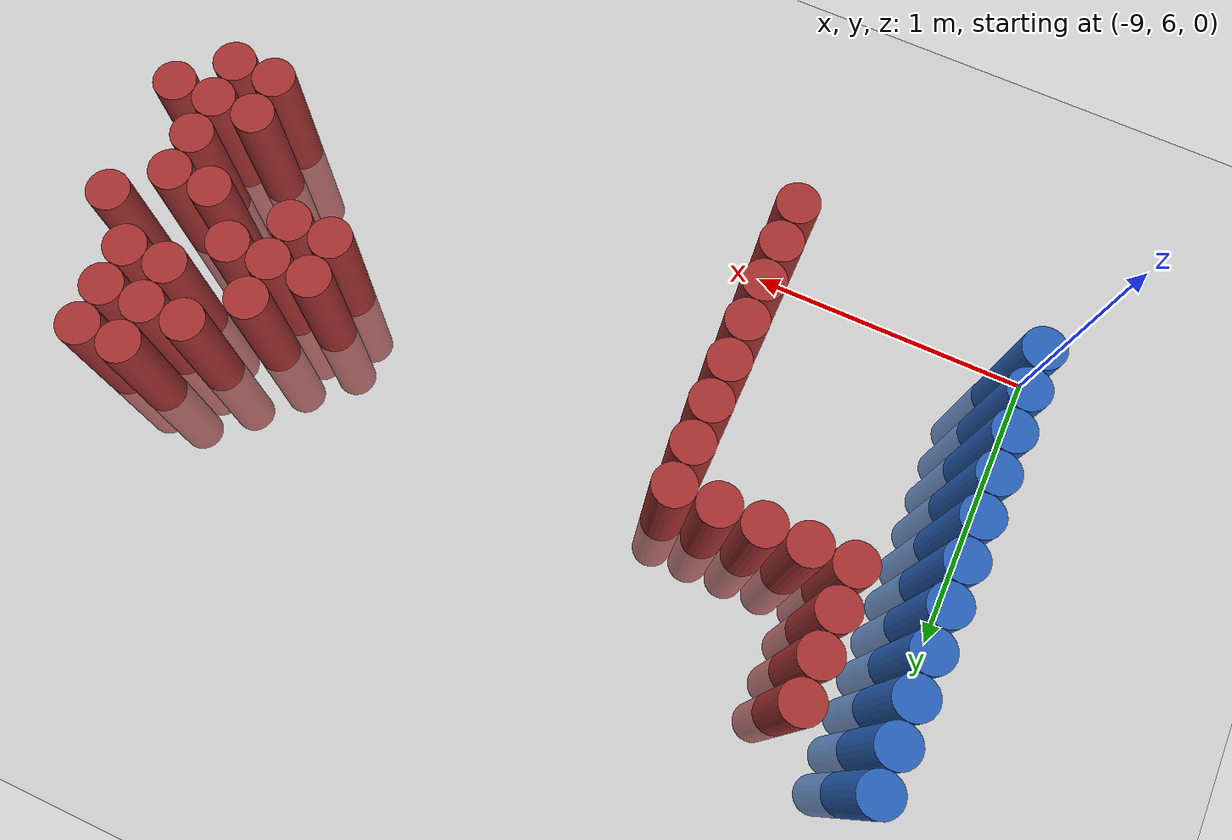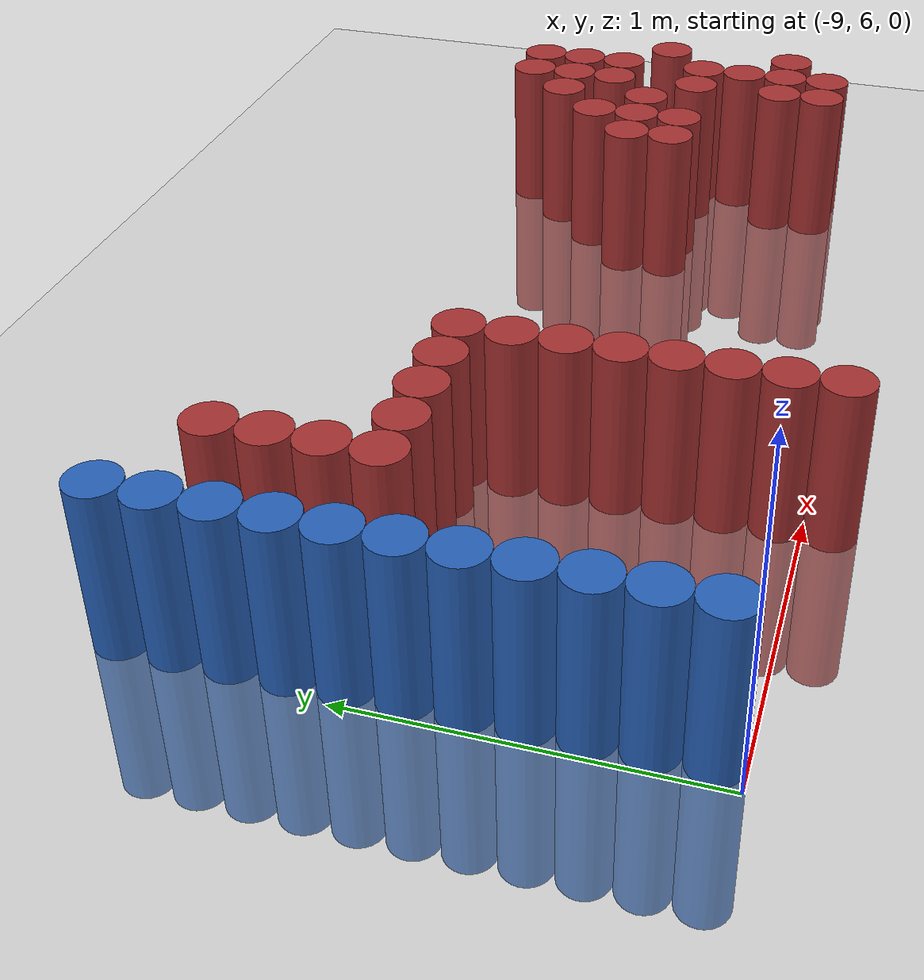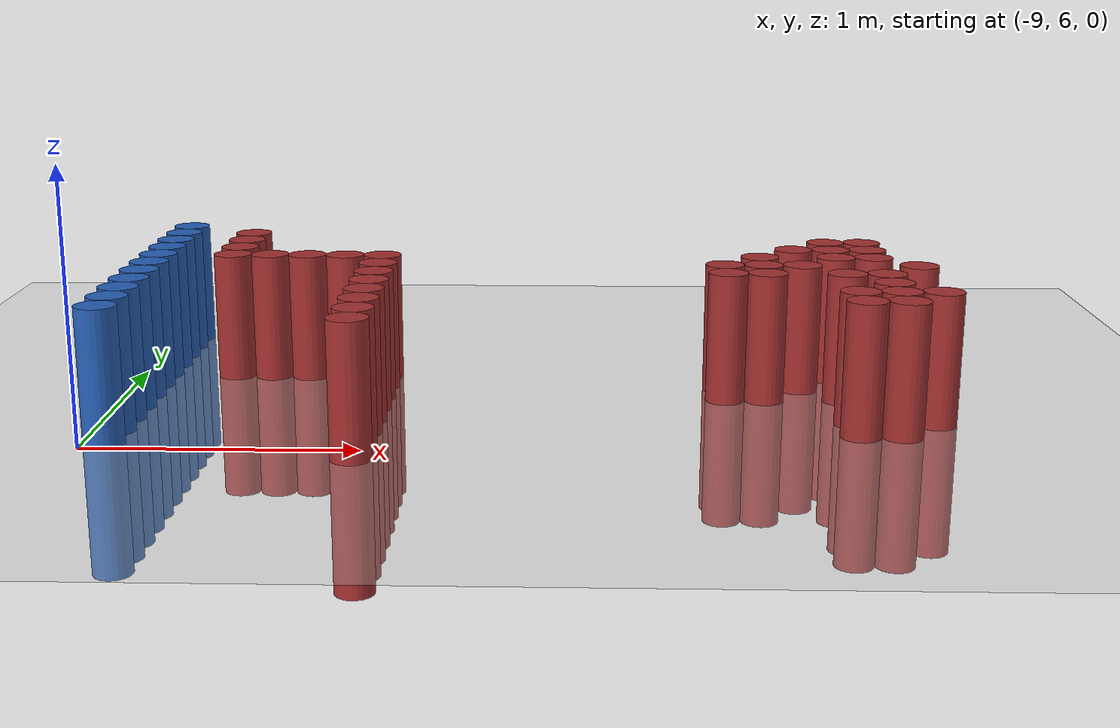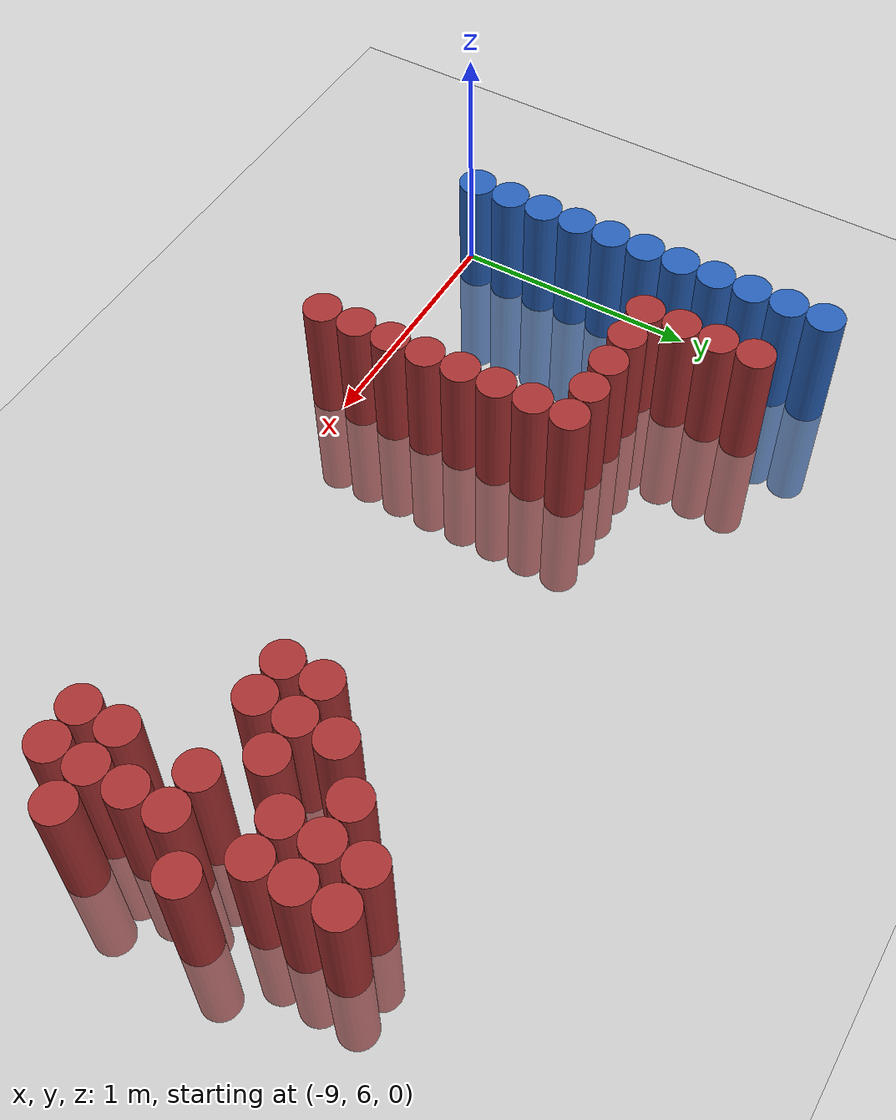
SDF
<sdf version="1.6">
 <world name="default">
  <model name="ground_plane">
   <static>1</static>
   <link name="link">
    <collision name="collision">
     <geometry><plane><normal>0 0 1</normal><size>100 100</size></plane></geometry>
     <surface><friction><ode><mu>100</mu><mu2>50</mu2></ode></friction></surface>
    </collision>
    <visual name="visual">
     <cast_shadows>0</cast_shadows>
     <geometry><plane><normal>0 0 1</normal><size>100 100</size></plane></geometry>
     <material>
      <script><uri>file://media/materials/scripts/gazebo.material</uri><name>Gazebo/Grey</name></script>
     </material>
    </visual>
   </link>
  </model>
  <model name="unit_cylinder_131">
   <static>1</static>
   <pose>-8.925000 6.075000 0.000000 0.000000 0.000000 0.000000</pose>
   <link name="link">
    <inertial>
     <mass>1</mass>
     <inertia><ixx>0.145833</ixx><ixy>0</ixy><ixz>0</ixz><iyy>0.145833</iyy><iyz>0</iyz><izz>0.125</izz></inertia>
    </inertial>
    <collision name="collision">
     <geometry><cylinder><radius>0.075000</radius><length>1</length></cylinder></geometry>
    </collision>
    <visual name="visual">
     <geometry><cylinder><radius>0.075000</radius><length>1</length></cylinder></geometry>
     <material>
      <ambient>0.152000 0.379000 0.720000 1</ambient>
      <diffuse>0.152000 0.379000 0.720000 1</diffuse>
     </material>
     <material>
      <script><name>Gazebo/Grey</name><uri>file://media/materials/scripts/gazebo.material</uri></script>
     </material>
    </visual>
   </link>
  </model>
  <model name="unit_cylinder_132">
   <static>1</static>
   <pose>-8.925000 6.225000 0.000000 0.000000 0.000000 0.000000</pose>
   <link name="link">
    <inertial>
     <mass>1</mass>
     <inertia><ixx>0.145833</ixx><ixy>0</ixy><ixz>0</ixz><iyy>0.145833</iyy><iyz>0</iyz><izz>0.125</izz></inertia>
    </inertial>
    <collision name="collision">
     <geometry><cylinder><radius>0.075000</radius><length>1</length></cylinder></geometry>
    </collision>
    <visual name="visual">
     <geometry><cylinder><radius>0.075000</radius><length>1</length></cylinder></geometry>
     <material>
      <ambient>0.152000 0.379000 0.720000 1</ambient>
      <diffuse>0.152000 0.379000 0.720000 1</diffuse>
     </material>
     <material>
      <script><name>Gazebo/Grey</name><uri>file://media/materials/scripts/gazebo.material</uri></script>
     </material>
    </visual>
   </link>
  </model>
  <model name="unit_cylinder_133">
   <static>1</static>
   <pose>-8.925000 6.375000 0.000000 0.000000 0.000000 0.000000</pose>
   <link name="link">
    <inertial>
     <mass>1</mass>
     <inertia><ixx>0.145833</ixx><ixy>0</ixy><ixz>0</ixz><iyy>0.145833</iyy><iyz>0</iyz><izz>0.125</izz></inertia>
    </inertial>
    <collision name="collision">
     <geometry><cylinder><radius>0.075000</radius><length>1</length></cylinder></geometry>
    </collision>
    <visual name="visual">
     <geometry><cylinder><radius>0.075000</radius><length>1</length></cylinder></geometry>
     <material>
      <ambient>0.152000 0.379000 0.720000 1</ambient>
      <diffuse>0.152000 0.379000 0.720000 1</diffuse>
     </material>
     <material>
      <script><name>Gazebo/Grey</name><uri>file://media/materials/scripts/gazebo.material</uri></script>
     </material>
    </visual>
   </link>
  </model>
  <model name="unit_cylinder_134">
   <static>1</static>
   <pose>-8.925000 6.525000 0.000000 0.000000 0.000000 0.000000</pose>
   <link name="link">
    <inertial>
     <mass>1</mass>
     <inertia><ixx>0.145833</ixx><ixy>0</ixy><ixz>0</ixz><iyy>0.145833</iyy><iyz>0</iyz><izz>0.125</izz></inertia>
    </inertial>
    <collision name="collision">
     <geometry><cylinder><radius>0.075000</radius><length>1</length></cylinder></geometry>
    </collision>
    <visual name="visual">
     <geometry><cylinder><radius>0.075000</radius><length>1</length></cylinder></geometry>
     <material>
      <ambient>0.152000 0.379000 0.720000 1</ambient>
      <diffuse>0.152000 0.379000 0.720000 1</diffuse>
     </material>
     <material>
      <script><name>Gazebo/Grey</name><uri>file://media/materials/scripts/gazebo.material</uri></script>
     </material>
    </visual>
   </link>
  </model>
  <model name="unit_cylinder_135">
   <static>1</static>
   <pose>-8.925000 6.675000 0.000000 0.000000 0.000000 0.000000</pose>
   <link name="link">
    <inertial>
     <mass>1</mass>
     <inertia><ixx>0.145833</ixx><ixy>0</ixy><ixz>0</ixz><iyy>0.145833</iyy><iyz>0</iyz><izz>0.125</izz></inertia>
    </inertial>
    <collision name="collision">
     <geometry><cylinder><radius>0.075000</radius><length>1</length></cylinder></geometry>
    </collision>
    <visual name="visual">
     <geometry><cylinder><radius>0.075000</radius><length>1</length></cylinder></geometry>
     <material>
      <ambient>0.152000 0.379000 0.720000 1</ambient>
      <diffuse>0.152000 0.379000 0.720000 1</diffuse>
     </material>
     <material>
      <script><name>Gazebo/Grey</name><uri>file://media/materials/scripts/gazebo.material</uri></script>
     </material>
    </visual>
   </link>
  </model>
  <model name="unit_cylinder_136">
   <static>1</static>
   <pose>-8.925000 6.825000 0.000000 0.000000 0.000000 0.000000</pose>
   <link name="link">
    <inertial>
     <mass>1</mass>
     <inertia><ixx>0.145833</ixx><ixy>0</ixy><ixz>0</ixz><iyy>0.145833</iyy><iyz>0</iyz><izz>0.125</izz></inertia>
    </inertial>
    <collision name="collision">
     <geometry><cylinder><radius>0.075000</radius><length>1</length></cylinder></geometry>
    </collision>
    <visual name="visual">
     <geometry><cylinder><radius>0.075000</radius><length>1</length></cylinder></geometry>
     <material>
      <ambient>0.152000 0.379000 0.720000 1</ambient>
      <diffuse>0.152000 0.379000 0.720000 1</diffuse>
     </material>
     <material>
      <script><name>Gazebo/Grey</name><uri>file://media/materials/scripts/gazebo.material</uri></script>
     </material>
    </visual>
   </link>
  </model>
  <model name="unit_cylinder_137">
   <static>1</static>
   <pose>-8.925000 6.975000 0.000000 0.000000 0.000000 0.000000</pose>
   <link name="link">
    <inertial>
     <mass>1</mass>
     <inertia><ixx>0.145833</ixx><ixy>0</ixy><ixz>0</ixz><iyy>0.145833</iyy><iyz>0</iyz><izz>0.125</izz></inertia>
    </inertial>
    <collision name="collision">
     <geometry><cylinder><radius>0.075000</radius><length>1</length></cylinder></geometry>
    </collision>
    <visual name="visual">
     <geometry><cylinder><radius>0.075000</radius><length>1</length></cylinder></geometry>
     <material>
      <ambient>0.152000 0.379000 0.720000 1</ambient>
      <diffuse>0.152000 0.379000 0.720000 1</diffuse>
     </material>
     <material>
      <script><name>Gazebo/Grey</name><uri>file://media/materials/scripts/gazebo.material</uri></script>
     </material>
    </visual>
   </link>
  </model>
  <model name="unit_cylinder_138">
   <static>1</static>
   <pose>-8.925000 7.125000 0.000000 0.000000 0.000000 0.000000</pose>
   <link name="link">
    <inertial>
     <mass>1</mass>
     <inertia><ixx>0.145833</ixx><ixy>0</ixy><ixz>0</ixz><iyy>0.145833</iyy><iyz>0</iyz><izz>0.125</izz></inertia>
    </inertial>
    <collision name="collision">
     <geometry><cylinder><radius>0.075000</radius><length>1</length></cylinder></geometry>
    </collision>
    <visual name="visual">
     <geometry><cylinder><radius>0.075000</radius><length>1</length></cylinder></geometry>
     <material>
      <ambient>0.152000 0.379000 0.720000 1</ambient>
      <diffuse>0.152000 0.379000 0.720000 1</diffuse>
     </material>
     <material>
      <script><name>Gazebo/Grey</name><uri>file://media/materials/scripts/gazebo.material</uri></script>
     </material>
    </visual>
   </link>
  </model>
  <model name="unit_cylinder_139">
   <static>1</static>
   <pose>-8.925000 7.275000 0.000000 0.000000 0.000000 0.000000</pose>
   <link name="link">
    <inertial>
     <mass>1</mass>
     <inertia><ixx>0.145833</ixx><ixy>0</ixy><ixz>0</ixz><iyy>0.145833</iyy><iyz>0</iyz><izz>0.125</izz></inertia>
    </inertial>
    <collision name="collision">
     <geometry><cylinder><radius>0.075000</radius><length>1</length></cylinder></geometry>
    </collision>
    <visual name="visual">
     <geometry><cylinder><radius>0.075000</radius><length>1</length></cylinder></geometry>
     <material>
      <ambient>0.152000 0.379000 0.720000 1</ambient>
      <diffuse>0.152000 0.379000 0.720000 1</diffuse>
     </material>
     <material>
      <script><name>Gazebo/Grey</name><uri>file://media/materials/scripts/gazebo.material</uri></script>
     </material>
    </visual>
   </link>
  </model>
  <model name="unit_cylinder_140">
   <static>1</static>
   <pose>-8.925000 7.425000 0.000000 0.000000 0.000000 0.000000</pose>
   <link name="link">
    <inertial>
     <mass>1</mass>
     <inertia><ixx>0.145833</ixx><ixy>0</ixy><ixz>0</ixz><iyy>0.145833</iyy><iyz>0</iyz><izz>0.125</izz></inertia>
    </inertial>
    <collision name="collision">
     <geometry><cylinder><radius>0.075000</radius><length>1</length></cylinder></geometry>
    </collision>
    <visual name="visual">
     <geometry><cylinder><radius>0.075000</radius><length>1</length></cylinder></geometry>
     <material>
      <ambient>0.152000 0.379000 0.720000 1</ambient>
      <diffuse>0.152000 0.379000 0.720000 1</diffuse>
     </material>
     <material>
      <script><name>Gazebo/Grey</name><uri>file://media/materials/scripts/gazebo.material</uri></script>
     </material>
    </visual>
   </link>
  </model>
  <model name="unit_cylinder_141">
   <static>1</static>
   <pose>-8.925000 7.575000 0.000000 0.000000 0.000000 0.000000</pose>
   <link name="link">
    <inertial>
     <mass>1</mass>
     <inertia><ixx>0.145833</ixx><ixy>0</ixy><ixz>0</ixz><iyy>0.145833</iyy><iyz>0</iyz><izz>0.125</izz></inertia>
    </inertial>
    <collision name="collision">
     <geometry><cylinder><radius>0.075000</radius><length>1</length></cylinder></geometry>
    </collision>
    <visual name="visual">
     <geometry><cylinder><radius>0.075000</radius><length>1</length></cylinder></geometry>
     <material>
      <ambient>0.152000 0.379000 0.720000 1</ambient>
      <diffuse>0.152000 0.379000 0.720000 1</diffuse>
     </material>
     <material>
      <script><name>Gazebo/Grey</name><uri>file://media/materials/scripts/gazebo.material</uri></script>
     </material>
    </visual>
   </link>
  </model>
  <model name="unit_cylinder_158">
   <static>1</static>
   <pose>-8.625000 6.975000 0.000000 0.000000 0.000000 0.000000</pose>
   <link name="link">
    <inertial>
     <mass>1</mass>
     <inertia><ixx>0.145833</ixx><ixy>0</ixy><ixz>0</ixz><iyy>0.145833</iyy><iyz>0</iyz><izz>0.125</izz></inertia>
    </inertial>
    <collision name="collision">
     <geometry><cylinder><radius>0.075000</radius><length>1</length></cylinder></geometry>
    </collision>
    <visual name="visual">
     <geometry><cylinder><radius>0.075000</radius><length>1</length></cylinder></geometry>
     <material>
      <ambient>0.648000 0.192000 0.192000 1</ambient>
      <diffuse>0.648000 0.192000 0.192000 1</diffuse>
     </material>
     <material>
      <script><name>Gazebo/Grey</name><uri>file://media/materials/scripts/gazebo.material</uri></script>
     </material>
    </visual>
   </link>
  </model>
  <model name="unit_cylinder_159">
   <static>1</static>
   <pose>-8.625000 7.125000 0.000000 0.000000 0.000000 0.000000</pose>
   <link name="link">
    <inertial>
     <mass>1</mass>
     <inertia><ixx>0.145833</ixx><ixy>0</ixy><ixz>0</ixz><iyy>0.145833</iyy><iyz>0</iyz><izz>0.125</izz></inertia>
    </inertial>
    <collision name="collision">
     <geometry><cylinder><radius>0.075000</radius><length>1</length></cylinder></geometry>
    </collision>
    <visual name="visual">
     <geometry><cylinder><radius>0.075000</radius><length>1</length></cylinder></geometry>
     <material>
      <ambient>0.648000 0.192000 0.192000 1</ambient>
      <diffuse>0.648000 0.192000 0.192000 1</diffuse>
     </material>
     <material>
      <script><name>Gazebo/Grey</name><uri>file://media/materials/scripts/gazebo.material</uri></script>
     </material>
    </visual>
   </link>
  </model>
  <model name="unit_cylinder_160">
   <static>1</static>
   <pose>-8.625000 7.275000 0.000000 0.000000 0.000000 0.000000</pose>
   <link name="link">
    <inertial>
     <mass>1</mass>
     <inertia><ixx>0.145833</ixx><ixy>0</ixy><ixz>0</ixz><iyy>0.145833</iyy><iyz>0</iyz><izz>0.125</izz></inertia>
    </inertial>
    <collision name="collision">
     <geometry><cylinder><radius>0.075000</radius><length>1</length></cylinder></geometry>
    </collision>
    <visual name="visual">
     <geometry><cylinder><radius>0.075000</radius><length>1</length></cylinder></geometry>
     <material>
      <ambient>0.648000 0.192000 0.192000 1</ambient>
      <diffuse>0.648000 0.192000 0.192000 1</diffuse>
     </material>
     <material>
      <script><name>Gazebo/Grey</name><uri>file://media/materials/scripts/gazebo.material</uri></script>
     </material>
    </visual>
   </link>
  </model>
  <model name="unit_cylinder_161">
   <static>1</static>
   <pose>-8.625000 7.425000 0.000000 0.000000 0.000000 0.000000</pose>
   <link name="link">
    <inertial>
     <mass>1</mass>
     <inertia><ixx>0.145833</ixx><ixy>0</ixy><ixz>0</ixz><iyy>0.145833</iyy><iyz>0</iyz><izz>0.125</izz></inertia>
    </inertial>
    <collision name="collision">
     <geometry><cylinder><radius>0.075000</radius><length>1</length></cylinder></geometry>
    </collision>
    <visual name="visual">
     <geometry><cylinder><radius>0.075000</radius><length>1</length></cylinder></geometry>
     <material>
      <ambient>0.648000 0.192000 0.192000 1</ambient>
      <diffuse>0.648000 0.192000 0.192000 1</diffuse>
     </material>
     <material>
      <script><name>Gazebo/Grey</name><uri>file://media/materials/scripts/gazebo.material</uri></script>
     </material>
    </visual>
   </link>
  </model>
  <model name="unit_cylinder_177">
   <static>1</static>
   <pose>-8.475000 6.975000 0.000000 0.000000 0.000000 0.000000</pose>
   <link name="link">
    <inertial>
     <mass>1</mass>
     <inertia><ixx>0.145833</ixx><ixy>0</ixy><ixz>0</ixz><iyy>0.145833</iyy><iyz>0</iyz><izz>0.125</izz></inertia>
    </inertial>
    <collision name="collision">
     <geometry><cylinder><radius>0.075000</radius><length>1</length></cylinder></geometry>
    </collision>
    <visual name="visual">
     <geometry><cylinder><radius>0.075000</radius><length>1</length></cylinder></geometry>
     <material>
      <ambient>0.648000 0.192000 0.192000 1</ambient>
      <diffuse>0.648000 0.192000 0.192000 1</diffuse>
     </material>
     <material>
      <script><name>Gazebo/Grey</name><uri>file://media/materials/scripts/gazebo.material</uri></script>
     </material>
    </visual>
   </link>
  </model>
  <model name="unit_cylinder_179">
   <static>1</static>
   <pose>-8.325000 6.975000 0.000000 0.000000 0.000000 0.000000</pose>
   <link name="link">
    <inertial>
     <mass>1</mass>
     <inertia><ixx>0.145833</ixx><ixy>0</ixy><ixz>0</ixz><iyy>0.145833</iyy><iyz>0</iyz><izz>0.125</izz></inertia>
    </inertial>
    <collision name="collision">
     <geometry><cylinder><radius>0.075000</radius><length>1</length></cylinder></geometry>
    </collision>
    <visual name="visual">
     <geometry><cylinder><radius>0.075000</radius><length>1</length></cylinder></geometry>
     <material>
      <ambient>0.648000 0.192000 0.192000 1</ambient>
      <diffuse>0.648000 0.192000 0.192000 1</diffuse>
     </material>
     <material>
      <script><name>Gazebo/Grey</name><uri>file://media/materials/scripts/gazebo.material</uri></script>
     </material>
    </visual>
   </link>
  </model>
  <model name="unit_cylinder_181">
   <static>1</static>
   <pose>-8.175000 6.975000 0.000000 0.000000 0.000000 0.000000</pose>
   <link name="link">
    <inertial>
     <mass>1</mass>
     <inertia><ixx>0.145833</ixx><ixy>0</ixy><ixz>0</ixz><iyy>0.145833</iyy><iyz>0</iyz><izz>0.125</izz></inertia>
    </inertial>
    <collision name="collision">
     <geometry><cylinder><radius>0.075000</radius><length>1</length></cylinder></geometry>
    </collision>
    <visual name="visual">
     <geometry><cylinder><radius>0.075000</radius><length>1</length></cylinder></geometry>
     <material>
      <ambient>0.648000 0.192000 0.192000 1</ambient>
      <diffuse>0.648000 0.192000 0.192000 1</diffuse>
     </material>
     <material>
      <script><name>Gazebo/Grey</name><uri>file://media/materials/scripts/gazebo.material</uri></script>
     </material>
    </visual>
   </link>
  </model>
  <model name="unit_cylinder_187">
   <static>1</static>
   <pose>-8.025000 5.925000 0.000000 0.000000 0.000000 0.000000</pose>
   <link name="link">
    <inertial>
     <mass>1</mass>
     <inertia><ixx>0.145833</ixx><ixy>0</ixy><ixz>0</ixz><iyy>0.145833</iyy><iyz>0</iyz><izz>0.125</izz></inertia>
    </inertial>
    <collision name="collision">
     <geometry><cylinder><radius>0.075000</radius><length>1</length></cylinder></geometry>
    </collision>
    <visual name="visual">
     <geometry><cylinder><radius>0.075000</radius><length>1</length></cylinder></geometry>
     <material>
      <ambient>0.648000 0.192000 0.192000 1</ambient>
      <diffuse>0.648000 0.192000 0.192000 1</diffuse>
     </material>
     <material>
      <script><name>Gazebo/Grey</name><uri>file://media/materials/scripts/gazebo.material</uri></script>
     </material>
    </visual>
   </link>
  </model>
  <model name="unit_cylinder_188">
   <static>1</static>
   <pose>-8.025000 6.075000 0.000000 0.000000 0.000000 0.000000</pose>
   <link name="link">
    <inertial>
     <mass>1</mass>
     <inertia><ixx>0.145833</ixx><ixy>0</ixy><ixz>0</ixz><iyy>0.145833</iyy><iyz>0</iyz><izz>0.125</izz></inertia>
    </inertial>
    <collision name="collision">
     <geometry><cylinder><radius>0.075000</radius><length>1</length></cylinder></geometry>
    </collision>
    <visual name="visual">
     <geometry><cylinder><radius>0.075000</radius><length>1</length></cylinder></geometry>
     <material>
      <ambient>0.648000 0.192000 0.192000 1</ambient>
      <diffuse>0.648000 0.192000 0.192000 1</diffuse>
     </material>
     <material>
      <script><name>Gazebo/Grey</name><uri>file://media/materials/scripts/gazebo.material</uri></script>
     </material>
    </visual>
   </link>
  </model>
  <model name="unit_cylinder_189">
   <static>1</static>
   <pose>-8.025000 6.225000 0.000000 0.000000 0.000000 0.000000</pose>
   <link name="link">
    <inertial>
     <mass>1</mass>
     <inertia><ixx>0.145833</ixx><ixy>0</ixy><ixz>0</ixz><iyy>0.145833</iyy><iyz>0</iyz><izz>0.125</izz></inertia>
    </inertial>
    <collision name="collision">
     <geometry><cylinder><radius>0.075000</radius><length>1</length></cylinder></geometry>
    </collision>
    <visual name="visual">
     <geometry><cylinder><radius>0.075000</radius><length>1</length></cylinder></geometry>
     <material>
      <ambient>0.648000 0.192000 0.192000 1</ambient>
      <diffuse>0.648000 0.192000 0.192000 1</diffuse>
     </material>
     <material>
      <script><name>Gazebo/Grey</name><uri>file://media/materials/scripts/gazebo.material</uri></script>
     </material>
    </visual>
   </link>
  </model>
  <model name="unit_cylinder_190">
   <static>1</static>
   <pose>-8.025000 6.375000 0.000000 0.000000 0.000000 0.000000</pose>
   <link name="link">
    <inertial>
     <mass>1</mass>
     <inertia><ixx>0.145833</ixx><ixy>0</ixy><ixz>0</ixz><iyy>0.145833</iyy><iyz>0</iyz><izz>0.125</izz></inertia>
    </inertial>
    <collision name="collision">
     <geometry><cylinder><radius>0.075000</radius><length>1</length></cylinder></geometry>
    </collision>
    <visual name="visual">
     <geometry><cylinder><radius>0.075000</radius><length>1</length></cylinder></geometry>
     <material>
      <ambient>0.648000 0.192000 0.192000 1</ambient>
      <diffuse>0.648000 0.192000 0.192000 1</diffuse>
     </material>
     <material>
      <script><name>Gazebo/Grey</name><uri>file://media/materials/scripts/gazebo.material</uri></script>
     </material>
    </visual>
   </link>
  </model>
  <model name="unit_cylinder_191">
   <static>1</static>
   <pose>-8.025000 6.525000 0.000000 0.000000 0.000000 0.000000</pose>
   <link name="link">
    <inertial>
     <mass>1</mass>
     <inertia><ixx>0.145833</ixx><ixy>0</ixy><ixz>0</ixz><iyy>0.145833</iyy><iyz>0</iyz><izz>0.125</izz></inertia>
    </inertial>
    <collision name="collision">
     <geometry><cylinder><radius>0.075000</radius><length>1</length></cylinder></geometry>
    </collision>
    <visual name="visual">
     <geometry><cylinder><radius>0.075000</radius><length>1</length></cylinder></geometry>
     <material>
      <ambient>0.648000 0.192000 0.192000 1</ambient>
      <diffuse>0.648000 0.192000 0.192000 1</diffuse>
     </material>
     <material>
      <script><name>Gazebo/Grey</name><uri>file://media/materials/scripts/gazebo.material</uri></script>
     </material>
    </visual>
   </link>
  </model>
  <model name="unit_cylinder_192">
   <static>1</static>
   <pose>-8.025000 6.675000 0.000000 0.000000 0.000000 0.000000</pose>
   <link name="link">
    <inertial>
     <mass>1</mass>
     <inertia><ixx>0.145833</ixx><ixy>0</ixy><ixz>0</ixz><iyy>0.145833</iyy><iyz>0</iyz><izz>0.125</izz></inertia>
    </inertial>
    <collision name="collision">
     <geometry><cylinder><radius>0.075000</radius><length>1</length></cylinder></geometry>
    </collision>
    <visual name="visual">
     <geometry><cylinder><radius>0.075000</radius><length>1</length></cylinder></geometry>
     <material>
      <ambient>0.648000 0.192000 0.192000 1</ambient>
      <diffuse>0.648000 0.192000 0.192000 1</diffuse>
     </material>
     <material>
      <script><name>Gazebo/Grey</name><uri>file://media/materials/scripts/gazebo.material</uri></script>
     </material>
    </visual>
   </link>
  </model>
  <model name="unit_cylinder_193">
   <static>1</static>
   <pose>-8.025000 6.825000 0.000000 0.000000 0.000000 0.000000</pose>
   <link name="link">
    <inertial>
     <mass>1</mass>
     <inertia><ixx>0.145833</ixx><ixy>0</ixy><ixz>0</ixz><iyy>0.145833</iyy><iyz>0</iyz><izz>0.125</izz></inertia>
    </inertial>
    <collision name="collision">
     <geometry><cylinder><radius>0.075000</radius><length>1</length></cylinder></geometry>
    </collision>
    <visual name="visual">
     <geometry><cylinder><radius>0.075000</radius><length>1</length></cylinder></geometry>
     <material>
      <ambient>0.648000 0.192000 0.192000 1</ambient>
      <diffuse>0.648000 0.192000 0.192000 1</diffuse>
     </material>
     <material>
      <script><name>Gazebo/Grey</name><uri>file://media/materials/scripts/gazebo.material</uri></script>
     </material>
    </visual>
   </link>
  </model>
  <model name="unit_cylinder_194">
   <static>1</static>
   <pose>-8.025000 6.975000 0.000000 0.000000 0.000000 0.000000</pose>
   <link name="link">
    <inertial>
     <mass>1</mass>
     <inertia><ixx>0.145833</ixx><ixy>0</ixy><ixz>0</ixz><iyy>0.145833</iyy><iyz>0</iyz><izz>0.125</izz></inertia>
    </inertial>
    <collision name="collision">
     <geometry><cylinder><radius>0.075000</radius><length>1</length></cylinder></geometry>
    </collision>
    <visual name="visual">
     <geometry><cylinder><radius>0.075000</radius><length>1</length></cylinder></geometry>
     <material>
      <ambient>0.648000 0.192000 0.192000 1</ambient>
      <diffuse>0.648000 0.192000 0.192000 1</diffuse>
     </material>
     <material>
      <script><name>Gazebo/Grey</name><uri>file://media/materials/scripts/gazebo.material</uri></script>
     </material>
    </visual>
   </link>
  </model>
  <model name="unit_cylinder_210">
   <static>1</static>
   <pose>-6.675000 6.675000 0.000000 0.000000 0.000000 0.000000</pose>
   <link name="link">
    <inertial>
     <mass>1</mass>
     <inertia><ixx>0.145833</ixx><ixy>0</ixy><ixz>0</ixz><iyy>0.145833</iyy><iyz>0</iyz><izz>0.125</izz></inertia>
    </inertial>
    <collision name="collision">
     <geometry><cylinder><radius>0.075000</radius><length>1</length></cylinder></geometry>
    </collision>
    <visual name="visual">
     <geometry><cylinder><radius>0.075000</radius><length>1</length></cylinder></geometry>
     <material>
      <ambient>0.648000 0.192000 0.192000 1</ambient>
      <diffuse>0.648000 0.192000 0.192000 1</diffuse>
     </material>
     <material>
      <script><name>Gazebo/Grey</name><uri>file://media/materials/scripts/gazebo.material</uri></script>
     </material>
    </visual>
   </link>
  </model>
  <model name="unit_cylinder_211">
   <static>1</static>
   <pose>-6.675000 6.825000 0.000000 0.000000 0.000000 0.000000</pose>
   <link name="link">
    <inertial>
     <mass>1</mass>
     <inertia><ixx>0.145833</ixx><ixy>0</ixy><ixz>0</ixz><iyy>0.145833</iyy><iyz>0</iyz><izz>0.125</izz></inertia>
    </inertial>
    <collision name="collision">
     <geometry><cylinder><radius>0.075000</radius><length>1</length></cylinder></geometry>
    </collision>
    <visual name="visual">
     <geometry><cylinder><radius>0.075000</radius><length>1</length></cylinder></geometry>
     <material>
      <ambient>0.648000 0.192000 0.192000 1</ambient>
      <diffuse>0.648000 0.192000 0.192000 1</diffuse>
     </material>
     <material>
      <script><name>Gazebo/Grey</name><uri>file://media/materials/scripts/gazebo.material</uri></script>
     </material>
    </visual>
   </link>
  </model>
  <model name="unit_cylinder_215">
   <static>1</static>
   <pose>-6.525000 6.675000 0.000000 0.000000 0.000000 0.000000</pose>
   <link name="link">
    <inertial>
     <mass>1</mass>
     <inertia><ixx>0.145833</ixx><ixy>0</ixy><ixz>0</ixz><iyy>0.145833</iyy><iyz>0</iyz><izz>0.125</izz></inertia>
    </inertial>
    <collision name="collision">
     <geometry><cylinder><radius>0.075000</radius><length>1</length></cylinder></geometry>
    </collision>
    <visual name="visual">
     <geometry><cylinder><radius>0.075000</radius><length>1</length></cylinder></geometry>
     <material>
      <ambient>0.648000 0.192000 0.192000 1</ambient>
      <diffuse>0.648000 0.192000 0.192000 1</diffuse>
     </material>
     <material>
      <script><name>Gazebo/Grey</name><uri>file://media/materials/scripts/gazebo.material</uri></script>
     </material>
    </visual>
   </link>
  </model>
  <model name="unit_cylinder_216">
   <static>1</static>
   <pose>-6.525000 6.825000 0.000000 0.000000 0.000000 0.000000</pose>
   <link name="link">
    <inertial>
     <mass>1</mass>
     <inertia><ixx>0.145833</ixx><ixy>0</ixy><ixz>0</ixz><iyy>0.145833</iyy><iyz>0</iyz><izz>0.125</izz></inertia>
    </inertial>
    <collision name="collision">
     <geometry><cylinder><radius>0.075000</radius><length>1</length></cylinder></geometry>
    </collision>
    <visual name="visual">
     <geometry><cylinder><radius>0.075000</radius><length>1</length></cylinder></geometry>
     <material>
      <ambient>0.648000 0.192000 0.192000 1</ambient>
      <diffuse>0.648000 0.192000 0.192000 1</diffuse>
     </material>
     <material>
      <script><name>Gazebo/Grey</name><uri>file://media/materials/scripts/gazebo.material</uri></script>
     </material>
    </visual>
   </link>
  </model>
  <model name="unit_cylinder_217">
   <static>1</static>
   <pose>-6.525000 6.975000 0.000000 0.000000 0.000000 0.000000</pose>
   <link name="link">
    <inertial>
     <mass>1</mass>
     <inertia><ixx>0.145833</ixx><ixy>0</ixy><ixz>0</ixz><iyy>0.145833</iyy><iyz>0</iyz><izz>0.125</izz></inertia>
    </inertial>
    <collision name="collision">
     <geometry><cylinder><radius>0.075000</radius><length>1</length></cylinder></geometry>
    </collision>
    <visual name="visual">
     <geometry><cylinder><radius>0.075000</radius><length>1</length></cylinder></geometry>
     <material>
      <ambient>0.648000 0.192000 0.192000 1</ambient>
      <diffuse>0.648000 0.192000 0.192000 1</diffuse>
     </material>
     <material>
      <script><name>Gazebo/Grey</name><uri>file://media/materials/scripts/gazebo.material</uri></script>
     </material>
    </visual>
   </link>
  </model>
  <model name="unit_cylinder_219">
   <static>1</static>
   <pose>-6.375000 6.825000 0.000000 0.000000 0.000000 0.000000</pose>
   <link name="link">
    <inertial>
     <mass>1</mass>
     <inertia><ixx>0.145833</ixx><ixy>0</ixy><ixz>0</ixz><iyy>0.145833</iyy><iyz>0</iyz><izz>0.125</izz></inertia>
    </inertial>
    <collision name="collision">
     <geometry><cylinder><radius>0.075000</radius><length>1</length></cylinder></geometry>
    </collision>
    <visual name="visual">
     <geometry><cylinder><radius>0.075000</radius><length>1</length></cylinder></geometry>
     <material>
      <ambient>0.648000 0.192000 0.192000 1</ambient>
      <diffuse>0.648000 0.192000 0.192000 1</diffuse>
     </material>
     <material>
      <script><name>Gazebo/Grey</name><uri>file://media/materials/scripts/gazebo.material</uri></script>
     </material>
    </visual>
   </link>
  </model>
  <model name="unit_cylinder_220">
   <static>1</static>
   <pose>-6.375000 7.125000 0.000000 0.000000 0.000000 0.000000</pose>
   <link name="link">
    <inertial>
     <mass>1</mass>
     <inertia><ixx>0.145833</ixx><ixy>0</ixy><ixz>0</ixz><iyy>0.145833</iyy><iyz>0</iyz><izz>0.125</izz></inertia>
    </inertial>
    <collision name="collision">
     <geometry><cylinder><radius>0.075000</radius><length>1</length></cylinder></geometry>
    </collision>
    <visual name="visual">
     <geometry><cylinder><radius>0.075000</radius><length>1</length></cylinder></geometry>
     <material>
      <ambient>0.648000 0.192000 0.192000 1</ambient>
      <diffuse>0.648000 0.192000 0.192000 1</diffuse>
     </material>
     <material>
      <script><name>Gazebo/Grey</name><uri>file://media/materials/scripts/gazebo.material</uri></script>
     </material>
    </visual>
   </link>
  </model>
  <model name="unit_cylinder_221">
   <static>1</static>
   <pose>-6.225000 6.225000 0.000000 0.000000 0.000000 0.000000</pose>
   <link name="link">
    <inertial>
     <mass>1</mass>
     <inertia><ixx>0.145833</ixx><ixy>0</ixy><ixz>0</ixz><iyy>0.145833</iyy><iyz>0</iyz><izz>0.125</izz></inertia>
    </inertial>
    <collision name="collision">
     <geometry><cylinder><radius>0.075000</radius><length>1</length></cylinder></geometry>
    </collision>
    <visual name="visual">
     <geometry><cylinder><radius>0.075000</radius><length>1</length></cylinder></geometry>
     <material>
      <ambient>0.648000 0.192000 0.192000 1</ambient>
      <diffuse>0.648000 0.192000 0.192000 1</diffuse>
     </material>
     <material>
      <script><name>Gazebo/Grey</name><uri>file://media/materials/scripts/gazebo.material</uri></script>
     </material>
    </visual>
   </link>
  </model>
  <model name="unit_cylinder_222">
   <static>1</static>
   <pose>-6.225000 6.375000 0.000000 0.000000 0.000000 0.000000</pose>
   <link name="link">
    <inertial>
     <mass>1</mass>
     <inertia><ixx>0.145833</ixx><ixy>0</ixy><ixz>0</ixz><iyy>0.145833</iyy><iyz>0</iyz><izz>0.125</izz></inertia>
    </inertial>
    <collision name="collision">
     <geometry><cylinder><radius>0.075000</radius><length>1</length></cylinder></geometry>
    </collision>
    <visual name="visual">
     <geometry><cylinder><radius>0.075000</radius><length>1</length></cylinder></geometry>
     <material>
      <ambient>0.648000 0.192000 0.192000 1</ambient>
      <diffuse>0.648000 0.192000 0.192000 1</diffuse>
     </material>
     <material>
      <script><name>Gazebo/Grey</name><uri>file://media/materials/scripts/gazebo.material</uri></script>
     </material>
    </visual>
   </link>
  </model>
  <model name="unit_cylinder_223">
   <static>1</static>
   <pose>-6.225000 6.675000 0.000000 0.000000 0.000000 0.000000</pose>
   <link name="link">
    <inertial>
     <mass>1</mass>
     <inertia><ixx>0.145833</ixx><ixy>0</ixy><ixz>0</ixz><iyy>0.145833</iyy><iyz>0</iyz><izz>0.125</izz></inertia>
    </inertial>
    <collision name="collision">
     <geometry><cylinder><radius>0.075000</radius><length>1</length></cylinder></geometry>
    </collision>
    <visual name="visual">
     <geometry><cylinder><radius>0.075000</radius><length>1</length></cylinder></geometry>
     <material>
      <ambient>0.648000 0.192000 0.192000 1</ambient>
      <diffuse>0.648000 0.192000 0.192000 1</diffuse>
     </material>
     <material>
      <script><name>Gazebo/Grey</name><uri>file://media/materials/scripts/gazebo.material</uri></script>
     </material>
    </visual>
   </link>
  </model>
  <model name="unit_cylinder_224">
   <static>1</static>
   <pose>-6.225000 6.975000 0.000000 0.000000 0.000000 0.000000</pose>
   <link name="link">
    <inertial>
     <mass>1</mass>
     <inertia><ixx>0.145833</ixx><ixy>0</ixy><ixz>0</ixz><iyy>0.145833</iyy><iyz>0</iyz><izz>0.125</izz></inertia>
    </inertial>
    <collision name="collision">
     <geometry><cylinder><radius>0.075000</radius><length>1</length></cylinder></geometry>
    </collision>
    <visual name="visual">
     <geometry><cylinder><radius>0.075000</radius><length>1</length></cylinder></geometry>
     <material>
      <ambient>0.648000 0.192000 0.192000 1</ambient>
      <diffuse>0.648000 0.192000 0.192000 1</diffuse>
     </material>
     <material>
      <script><name>Gazebo/Grey</name><uri>file://media/materials/scripts/gazebo.material</uri></script>
     </material>
    </visual>
   </link>
  </model>
  <model name="unit_cylinder_225">
   <static>1</static>
   <pose>-6.225000 7.125000 0.000000 0.000000 0.000000 0.000000</pose>
   <link name="link">
    <inertial>
     <mass>1</mass>
     <inertia><ixx>0.145833</ixx><ixy>0</ixy><ixz>0</ixz><iyy>0.145833</iyy><iyz>0</iyz><izz>0.125</izz></inertia>
    </inertial>
    <collision name="collision">
     <geometry><cylinder><radius>0.075000</radius><length>1</length></cylinder></geometry>
    </collision>
    <visual name="visual">
     <geometry><cylinder><radius>0.075000</radius><length>1</length></cylinder></geometry>
     <material>
      <ambient>0.648000 0.192000 0.192000 1</ambient>
      <diffuse>0.648000 0.192000 0.192000 1</diffuse>
     </material>
     <material>
      <script><name>Gazebo/Grey</name><uri>file://media/materials/scripts/gazebo.material</uri></script>
     </material>
    </visual>
   </link>
  </model>
  <model name="unit_cylinder_226">
   <static>1</static>
   <pose>-6.225000 7.275000 0.000000 0.000000 0.000000 0.000000</pose>
   <link name="link">
    <inertial>
     <mass>1</mass>
     <inertia><ixx>0.145833</ixx><ixy>0</ixy><ixz>0</ixz><iyy>0.145833</iyy><iyz>0</iyz><izz>0.125</izz></inertia>
    </inertial>
    <collision name="collision">
     <geometry><cylinder><radius>0.075000</radius><length>1</length></cylinder></geometry>
    </collision>
    <visual name="visual">
     <geometry><cylinder><radius>0.075000</radius><length>1</length></cylinder></geometry>
     <material>
      <ambient>0.648000 0.192000 0.192000 1</ambient>
      <diffuse>0.648000 0.192000 0.192000 1</diffuse>
     </material>
     <material>
      <script><name>Gazebo/Grey</name><uri>file://media/materials/scripts/gazebo.material</uri></script>
     </material>
    </visual>
   </link>
  </model>
  <model name="unit_cylinder_231">
   <static>1</static>
   <pose>-6.075000 6.225000 0.000000 0.000000 0.000000 0.000000</pose>
   <link name="link">
    <inertial>
     <mass>1</mass>
     <inertia><ixx>0.145833</ixx><ixy>0</ixy><ixz>0</ixz><iyy>0.145833</iyy><iyz>0</iyz><izz>0.125</izz></inertia>
    </inertial>
    <collision name="collision">
     <geometry><cylinder><radius>0.075000</radius><length>1</length></cylinder></geometry>
    </collision>
    <visual name="visual">
     <geometry><cylinder><radius>0.075000</radius><length>1</length></cylinder></geometry>
     <material>
      <ambient>0.648000 0.192000 0.192000 1</ambient>
      <diffuse>0.648000 0.192000 0.192000 1</diffuse>
     </material>
     <material>
      <script><name>Gazebo/Grey</name><uri>file://media/materials/scripts/gazebo.material</uri></script>
     </material>
    </visual>
   </link>
  </model>
  <model name="unit_cylinder_232">
   <static>1</static>
   <pose>-6.075000 6.375000 0.000000 0.000000 0.000000 0.000000</pose>
   <link name="link">
    <inertial>
     <mass>1</mass>
     <inertia><ixx>0.145833</ixx><ixy>0</ixy><ixz>0</ixz><iyy>0.145833</iyy><iyz>0</iyz><izz>0.125</izz></inertia>
    </inertial>
    <collision name="collision">
     <geometry><cylinder><radius>0.075000</radius><length>1</length></cylinder></geometry>
    </collision>
    <visual name="visual">
     <geometry><cylinder><radius>0.075000</radius><length>1</length></cylinder></geometry>
     <material>
      <ambient>0.648000 0.192000 0.192000 1</ambient>
      <diffuse>0.648000 0.192000 0.192000 1</diffuse>
     </material>
     <material>
      <script><name>Gazebo/Grey</name><uri>file://media/materials/scripts/gazebo.material</uri></script>
     </material>
    </visual>
   </link>
  </model>
  <model name="unit_cylinder_233">
   <static>1</static>
   <pose>-6.075000 6.525000 0.000000 0.000000 0.000000 0.000000</pose>
   <link name="link">
    <inertial>
     <mass>1</mass>
     <inertia><ixx>0.145833</ixx><ixy>0</ixy><ixz>0</ixz><iyy>0.145833</iyy><iyz>0</iyz><izz>0.125</izz></inertia>
    </inertial>
    <collision name="collision">
     <geometry><cylinder><radius>0.075000</radius><length>1</length></cylinder></geometry>
    </collision>
    <visual name="visual">
     <geometry><cylinder><radius>0.075000</radius><length>1</length></cylinder></geometry>
     <material>
      <ambient>0.648000 0.192000 0.192000 1</ambient>
      <diffuse>0.648000 0.192000 0.192000 1</diffuse>
     </material>
     <material>
      <script><name>Gazebo/Grey</name><uri>file://media/materials/scripts/gazebo.material</uri></script>
     </material>
    </visual>
   </link>
  </model>
  <model name="unit_cylinder_234">
   <static>1</static>
   <pose>-6.075000 6.675000 0.000000 0.000000 0.000000 0.000000</pose>
   <link name="link">
    <inertial>
     <mass>1</mass>
     <inertia><ixx>0.145833</ixx><ixy>0</ixy><ixz>0</ixz><iyy>0.145833</iyy><iyz>0</iyz><izz>0.125</izz></inertia>
    </inertial>
    <collision name="collision">
     <geometry><cylinder><radius>0.075000</radius><length>1</length></cylinder></geometry>
    </collision>
    <visual name="visual">
     <geometry><cylinder><radius>0.075000</radius><length>1</length></cylinder></geometry>
     <material>
      <ambient>0.648000 0.192000 0.192000 1</ambient>
      <diffuse>0.648000 0.192000 0.192000 1</diffuse>
     </material>
     <material>
      <script><name>Gazebo/Grey</name><uri>file://media/materials/scripts/gazebo.material</uri></script>
     </material>
    </visual>
   </link>
  </model>
  <model name="unit_cylinder_235">
   <static>1</static>
   <pose>-6.075000 6.975000 0.000000 0.000000 0.000000 0.000000</pose>
   <link name="link">
    <inertial>
     <mass>1</mass>
     <inertia><ixx>0.145833</ixx><ixy>0</ixy><ixz>0</ixz><iyy>0.145833</iyy><iyz>0</iyz><izz>0.125</izz></inertia>
    </inertial>
    <collision name="collision">
     <geometry><cylinder><radius>0.075000</radius><length>1</length></cylinder></geometry>
    </collision>
    <visual name="visual">
     <geometry><cylinder><radius>0.075000</radius><length>1</length></cylinder></geometry>
     <material>
      <ambient>0.648000 0.192000 0.192000 1</ambient>
      <diffuse>0.648000 0.192000 0.192000 1</diffuse>
     </material>
     <material>
      <script><name>Gazebo/Grey</name><uri>file://media/materials/scripts/gazebo.material</uri></script>
     </material>
    </visual>
   </link>
  </model>
  <model name="unit_cylinder_236">
   <static>1</static>
   <pose>-6.075000 7.125000 0.000000 0.000000 0.000000 0.000000</pose>
   <link name="link">
    <inertial>
     <mass>1</mass>
     <inertia><ixx>0.145833</ixx><ixy>0</ixy><ixz>0</ixz><iyy>0.145833</iyy><iyz>0</iyz><izz>0.125</izz></inertia>
    </inertial>
    <collision name="collision">
     <geometry><cylinder><radius>0.075000</radius><length>1</length></cylinder></geometry>
    </collision>
    <visual name="visual">
     <geometry><cylinder><radius>0.075000</radius><length>1</length></cylinder></geometry>
     <material>
      <ambient>0.648000 0.192000 0.192000 1</ambient>
      <diffuse>0.648000 0.192000 0.192000 1</diffuse>
     </material>
     <material>
      <script><name>Gazebo/Grey</name><uri>file://media/materials/scripts/gazebo.material</uri></script>
     </material>
    </visual>
   </link>
  </model>
  <model name="unit_cylinder_237">
   <static>1</static>
   <pose>-6.075000 7.275000 0.000000 0.000000 0.000000 0.000000</pose>
   <link name="link">
    <inertial>
     <mass>1</mass>
     <inertia><ixx>0.145833</ixx><ixy>0</ixy><ixz>0</ixz><iyy>0.145833</iyy><iyz>0</iyz><izz>0.125</izz></inertia>
    </inertial>
    <collision name="collision">
     <geometry><cylinder><radius>0.075000</radius><length>1</length></cylinder></geometry>
    </collision>
    <visual name="visual">
     <geometry><cylinder><radius>0.075000</radius><length>1</length></cylinder></geometry>
     <material>
      <ambient>0.648000 0.192000 0.192000 1</ambient>
      <diffuse>0.648000 0.192000 0.192000 1</diffuse>
     </material>
     <material>
      <script><name>Gazebo/Grey</name><uri>file://media/materials/scripts/gazebo.material</uri></script>
     </material>
    </visual>
   </link>
  </model>
  <model name="unit_cylinder_244">
   <static>1</static>
   <pose>-5.925000 6.375000 0.000000 0.000000 0.000000 0.000000</pose>
   <link name="link">
    <inertial>
     <mass>1</mass>
     <inertia><ixx>0.145833</ixx><ixy>0</ixy><ixz>0</ixz><iyy>0.145833</iyy><iyz>0</iyz><izz>0.125</izz></inertia>
    </inertial>
    <collision name="collision">
     <geometry><cylinder><radius>0.075000</radius><length>1</length></cylinder></geometry>
    </collision>
    <visual name="visual">
     <geometry><cylinder><radius>0.075000</radius><length>1</length></cylinder></geometry>
     <material>
      <ambient>0.648000 0.192000 0.192000 1</ambient>
      <diffuse>0.648000 0.192000 0.192000 1</diffuse>
     </material>
     <material>
      <script><name>Gazebo/Grey</name><uri>file://media/materials/scripts/gazebo.material</uri></script>
     </material>
    </visual>
   </link>
  </model>
  <model name="unit_cylinder_245">
   <static>1</static>
   <pose>-5.925000 6.825000 0.000000 0.000000 0.000000 0.000000</pose>
   <link name="link">
    <inertial>
     <mass>1</mass>
     <inertia><ixx>0.145833</ixx><ixy>0</ixy><ixz>0</ixz><iyy>0.145833</iyy><iyz>0</iyz><izz>0.125</izz></inertia>
    </inertial>
    <collision name="collision">
     <geometry><cylinder><radius>0.075000</radius><length>1</length></cylinder></geometry>
    </collision>
    <visual name="visual">
     <geometry><cylinder><radius>0.075000</radius><length>1</length></cylinder></geometry>
     <material>
      <ambient>0.648000 0.192000 0.192000 1</ambient>
      <diffuse>0.648000 0.192000 0.192000 1</diffuse>
     </material>
     <material>
      <script><name>Gazebo/Grey</name><uri>file://media/materials/scripts/gazebo.material</uri></script>
     </material>
    </visual>
   </link>
  </model>
 </world>
</sdf>
